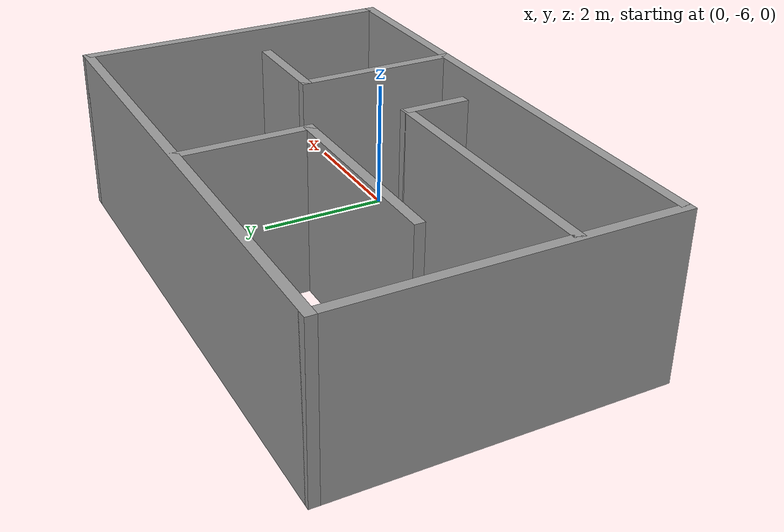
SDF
<?xml version='1.0'?>
<sdf version='1.7'>
  <model name='room'>
    <pose>-1.915 -3.4825 0 0 -0 0</pose>
    <link name='Wall_0'>
      <collision name='Wall_0_Collision'>
        <geometry>
          <box>
            <size>8 0.15 2.5</size>
          </box>
        </geometry>
        <pose>0 0 1.25 0 -0 0</pose>
      </collision>
      <visual name='Wall_0_Visual'>
        <pose>0 0 1.25 0 -0 0</pose>
        <geometry>
          <box>
            <size>8 0.15 2.5</size>
          </box>
        </geometry>
        <material>
          <script>
            <uri>file://media/materials/scripts/gazebo.material</uri>
            <name>Gazebo/Grey</name>
          </script>
          <ambient>1 1 1 1</ambient>
        </material>
        <meta>
          <layer>0</layer>
        </meta>
      </visual>
      <pose>0 1.4425 0 0 -0 0</pose>
    </link>
    <link name='Wall_10'>
      <collision name='Wall_10_Collision'>
        <geometry>
          <box>
            <size>1 0.15 2.5</size>
          </box>
        </geometry>
        <pose>0 0 1.25 0 -0 0</pose>
      </collision>
      <visual name='Wall_10_Visual'>
        <pose>0 0 1.25 0 -0 0</pose>
        <geometry>
          <box>
            <size>1 0.15 2.5</size>
          </box>
        </geometry>
        <material>
          <script>
            <uri>file://media/materials/scripts/gazebo.material</uri>
            <name>Gazebo/Grey</name>
          </script>
          <ambient>1 1 1 1</ambient>
        </material>
        <meta>
          <layer>0</layer>
        </meta>
      </visual>
      <pose>-0.055 -2.3025 0 0 -0 -1.5708</pose>
    </link>
    <link name='Wall_13'>
      <collision name='Wall_13_Collision'>
        <geometry>
          <box>
            <size>2.5 0.15 2.5</size>
          </box>
        </geometry>
        <pose>0 0 1.25 0 -0 0</pose>
      </collision>
      <visual name='Wall_13_Visual'>
        <pose>0 0 1.25 0 -0 0</pose>
        <geometry>
          <box>
            <size>2.5 0.15 2.5</size>
          </box>
        </geometry>
        <material>
          <script>
            <uri>file://media/materials/scripts/gazebo.material</uri>
            <name>Gazebo/Grey</name>
          </script>
          <ambient>1 1 1 1</ambient>
        </material>
        <meta>
          <layer>0</layer>
        </meta>
      </visual>
      <pose>1.495 -2.2325 0 0 -0 1.5708</pose>
    </link>
    <link name='Wall_14'>
      <collision name='Wall_14_Collision'>
        <geometry>
          <box>
            <size>1.5 0.15 2.5</size>
          </box>
        </geometry>
        <pose>0 0 1.25 0 -0 0</pose>
      </collision>
      <visual name='Wall_14_Visual'>
        <pose>0 0 1.25 0 -0 0</pose>
        <geometry>
          <box>
            <size>1.5 0.15 2.5</size>
          </box>
        </geometry>
        <material>
          <script>
            <uri>file://media/materials/scripts/gazebo.material</uri>
            <name>Gazebo/Grey</name>
          </script>
          <ambient>1 1 1 1</ambient>
        </material>
        <meta>
          <layer>0</layer>
        </meta>
      </visual>
      <pose>2.17 -1.0575 0 0 -0 0</pose>
    </link>
    <link name='Wall_2'>
      <collision name='Wall_2_Collision'>
        <geometry>
          <box>
            <size>5 0.15 2.5</size>
          </box>
        </geometry>
        <pose>0 0 1.25 0 -0 0</pose>
      </collision>
      <visual name='Wall_2_Visual'>
        <pose>0 0 1.25 0 -0 0</pose>
        <geometry>
          <box>
            <size>5 0.15 2.5</size>
          </box>
        </geometry>
        <material>
          <script>
            <uri>file://media/materials/scripts/gazebo.material</uri>
            <name>Gazebo/Grey</name>
          </script>
          <ambient>1 1 1 1</ambient>
        </material>
        <meta>
          <layer>0</layer>
        </meta>
      </visual>
      <pose>-3.925 -0.9825 0 0 -0 -1.5708</pose>
    </link>
    <link name='Wall_3'>
      <collision name='Wall_3_Collision'>
        <geometry>
          <box>
            <size>8 0.15 2.5</size>
          </box>
        </geometry>
        <pose>0 0 1.25 0 -0 0</pose>
      </collision>
      <visual name='Wall_3_Visual'>
        <pose>0 0 1.25 0 -0 0</pose>
        <geometry>
          <box>
            <size>8 0.15 2.5</size>
          </box>
        </geometry>
        <material>
          <script>
            <uri>file://media/materials/scripts/gazebo.material</uri>
            <name>Gazebo/Grey</name>
          </script>
          <ambient>1 1 1 1</ambient>
        </material>
        <meta>
          <layer>0</layer>
        </meta>
      </visual>
      <pose>0 -3.4075 0 0 -0 0</pose>
    </link>
    <link name='Wall_4'>
      <collision name='Wall_4_Collision'>
        <geometry>
          <box>
            <size>5 0.15 2.5</size>
          </box>
        </geometry>
        <pose>0 0 1.25 0 -0 0</pose>
      </collision>
      <visual name='Wall_4_Visual'>
        <pose>0 0 1.25 0 -0 0</pose>
        <geometry>
          <box>
            <size>5 0.15 2.5</size>
          </box>
        </geometry>
        <material>
          <script>
            <uri>file://media/materials/scripts/gazebo.material</uri>
            <name>Gazebo/Grey</name>
          </script>
          <ambient>1 1 1 1</ambient>
        </material>
        <meta>
          <layer>0</layer>
        </meta>
      </visual>
      <pose>3.925 -0.9825 0 0 -0 1.5708</pose>
    </link>
    <link name='Wall_6'>
      <collision name='Wall_6_Collision'>
        <geometry>
          <box>
            <size>2 0.15 2.5</size>
          </box>
        </geometry>
        <pose>0 0 1.25 0 -0 0</pose>
      </collision>
      <visual name='Wall_6_Visual'>
        <pose>0 0 1.25 0 -0 0</pose>
        <geometry>
          <box>
            <size>2 0.15 2.5</size>
          </box>
        </geometry>
        <material>
          <script>
            <uri>file://media/materials/scripts/gazebo.material</uri>
            <name>Gazebo/Grey</name>
          </script>
          <ambient>1 1 1 1</ambient>
        </material>
        <meta>
          <layer>0</layer>
        </meta>
      </visual>
      <pose>0.055 0.4775 0 0 -0 -1.5708</pose>
    </link>
    <link name='Wall_7'>
      <collision name='Wall_7_Collision'>
        <geometry>
          <box>
            <size>3 0.15 2.5</size>
          </box>
        </geometry>
        <pose>0 0 1.25 0 -0 0</pose>
      </collision>
      <visual name='Wall_7_Visual'>
        <pose>0 0 1.25 0 -0 0</pose>
        <geometry>
          <box>
            <size>3 0.15 2.5</size>
          </box>
        </geometry>
        <material>
          <script>
            <uri>file://media/materials/scripts/gazebo.material</uri>
            <name>Gazebo/Grey</name>
          </script>
          <ambient>1 1 1 1</ambient>
        </material>
        <meta>
          <layer>0</layer>
        </meta>
      </visual>
      <pose>-1.37 -0.4475 0 0 -0 3.14159</pose>
    </link>
    <link name='Wall_9'>
      <collision name='Wall_9_Collision'>
        <geometry>
          <box>
            <size>4 0.15 2.5</size>
          </box>
        </geometry>
        <pose>0 0 1.25 0 -0 0</pose>
      </collision>
      <visual name='Wall_9_Visual'>
        <pose>0 0 1.25 0 -0 0</pose>
        <geometry>
          <box>
            <size>4 0.15 2.5</size>
          </box>
        </geometry>
        <material>
          <script>
            <uri>file://media/materials/scripts/gazebo.material</uri>
            <name>Gazebo/Grey</name>
          </script>
          <ambient>1 1 1 1</ambient>
        </material>
        <meta>
          <layer>0</layer>
        </meta>
      </visual>
      <pose>-1.98 -1.8775 0 0 -0 0</pose>
    </link>
    <static>1</static>
  </model>
</sdf>
